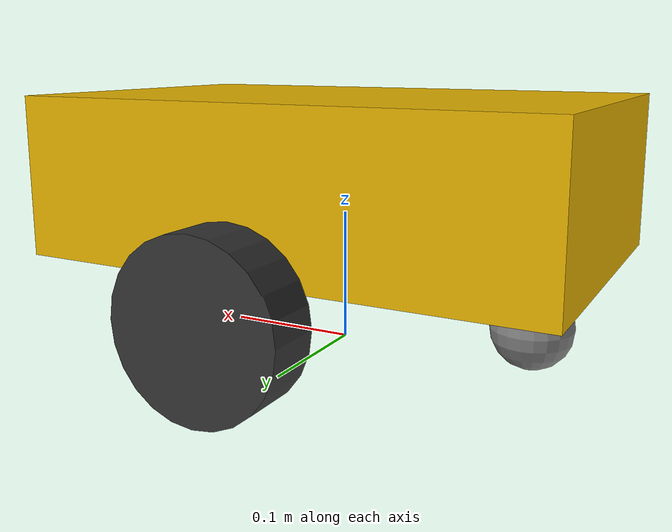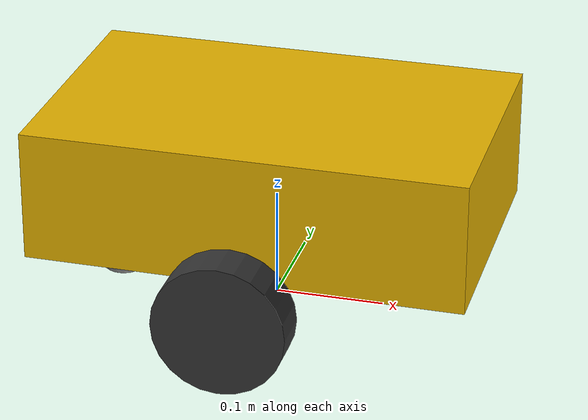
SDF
<?xml version="1.0"?>
<sdf version="1.10">
  <model name="forklift">
    <pose>0 0 0.13 0 0 0</pose>

    <!-- ── 1. Main body ── -->
    <link name="base_link">
      <inertial>
        <mass>5.0</mass>
        <inertia>
          <ixx>0.08</ixx><iyy>0.10</iyy><izz>0.10</izz>
          <ixy>0</ixy><ixz>0</ixz><iyz>0</iyz>
        </inertia>
      </inertial>
      <visual name="base_visual">
        <geometry>
          <box><size>0.4 0.25 0.12</size></box>
        </geometry>
        <material>
          <ambient>0.9 0.7 0.0 1</ambient>
          <diffuse>0.9 0.7 0.0 1</diffuse>
        </material>
      </visual>
      <collision name="base_collision">
        <geometry>
          <box><size>0.4 0.25 0.12</size></box>
        </geometry>
      </collision>
    </link>

    <!-- ── 2. Left drive wheel ── -->
    <link name="left_wheel">
      <!-- pose: x y z roll pitch yaw  (roll=pi/2 to orient cylinder axis laterally) -->
      <pose>0.0 0.175 -0.07 1.5708 0 0</pose>
      <inertial>
        <mass>0.5</mass>
        <inertia>
          <ixx>0.001</ixx><iyy>0.001</iyy><izz>0.001</izz>
          <ixy>0</ixy><ixz>0</ixz><iyz>0</iyz>
        </inertia>
      </inertial>
      <visual name="left_wheel_visual">
        <geometry>
          <cylinder><radius>0.06</radius><length>0.04</length></cylinder>
        </geometry>
        <material>
          <ambient>0.2 0.2 0.2 1</ambient>
          <diffuse>0.2 0.2 0.2 1</diffuse>
        </material>
      </visual>
      <collision name="left_wheel_collision">
        <geometry>
          <cylinder><radius>0.06</radius><length>0.04</length></cylinder>
        </geometry>
        <surface>
          <friction>
            <!-- mu: longitudinal friction, mu2: lateral friction -->
            <ode><mu>1.0</mu><mu2>0.5</mu2></ode>
          </friction>
        </surface>
      </collision>
    </link>

    <!-- ── 3. Right drive wheel ── -->
    <link name="right_wheel">
      <pose>0.0 -0.175 -0.07 1.5708 0 0</pose>
      <inertial>
        <mass>0.5</mass>
        <inertia>
          <ixx>0.001</ixx><iyy>0.001</iyy><izz>0.001</izz>
          <ixy>0</ixy><ixz>0</ixz><iyz>0</iyz>
        </inertia>
      </inertial>
      <visual name="right_wheel_visual">
        <geometry>
          <cylinder><radius>0.06</radius><length>0.04</length></cylinder>
        </geometry>
        <material>
          <ambient>0.2 0.2 0.2 1</ambient>
          <diffuse>0.2 0.2 0.2 1</diffuse>
        </material>
      </visual>
      <collision name="right_wheel_collision">
        <geometry>
          <cylinder><radius>0.06</radius><length>0.04</length></cylinder>
        </geometry>
        <surface>
          <friction>
            <ode><mu>1.0</mu><mu2>0.5</mu2></ode>
          </friction>
        </surface>
      </collision>
    </link>

    <!-- ── 4. Rear caster (friction-free ball to prevent tipping) ── -->
    <link name="caster">
      <pose>-0.15 0 -0.1 0 0 0</pose>
      <inertial>
        <mass>0.1</mass>
        <inertia>
          <ixx>0.0001</ixx><iyy>0.0001</iyy><izz>0.0001</izz>
          <ixy>0</ixy><ixz>0</ixz><iyz>0</iyz>
        </inertia>
      </inertial>
      <visual name="caster_visual">
        <geometry>
          <sphere><radius>0.03</radius></sphere>
        </geometry>
        <material>
          <ambient>0.5 0.5 0.5 1</ambient>
        </material>
      </visual>
      <collision name="caster_collision">
        <geometry>
          <sphere><radius>0.03</radius></sphere>
        </geometry>
        <surface>
          <friction>
            <!-- Zero friction so the caster does not resist turning -->
            <ode><mu>0.0</mu><mu2>0.0</mu2></ode>
          </friction>
        </surface>
      </collision>
    </link>

    <!-- ── 5. Joints ── -->
    <!-- Continuous revolute joints for the drive wheels -->
    <joint name="left_wheel_joint" type="revolute">
      <parent>base_link</parent>
      <child>left_wheel</child>
      <axis>
        <xyz>0 0 1</xyz>
        <limit><lower>-1e16</lower><upper>1e16</upper></limit>
      </axis>
    </joint>

    <joint name="right_wheel_joint" type="revolute">
      <parent>base_link</parent>
      <child>right_wheel</child>
      <axis>
        <xyz>0 0 1</xyz>
        <limit><lower>-1e16</lower><upper>1e16</upper></limit>
      </axis>
    </joint>

    <!-- Fixed joint: caster does not rotate relative to body -->
    <joint name="caster_joint" type="fixed">
      <parent>base_link</parent>
      <child>caster</child>
    </joint>

    <!-- ── 6. Differential drive plugin ── -->
    <plugin
      filename="gz-sim-diff-drive-system"
      name="gz::sim::systems::DiffDrive">
      <left_joint>left_wheel_joint</left_joint>
      <right_joint>right_wheel_joint</right_joint>
      <wheel_separation>0.35</wheel_separation>
      <wheel_radius>0.06</wheel_radius>
      <topic>/cmd_vel</topic>
      <odom_topic>/odom</odom_topic>
      <frame_id>odom</frame_id>
      <child_frame_id>base_link</child_frame_id>
    </plugin>

  </model>
</sdf>
